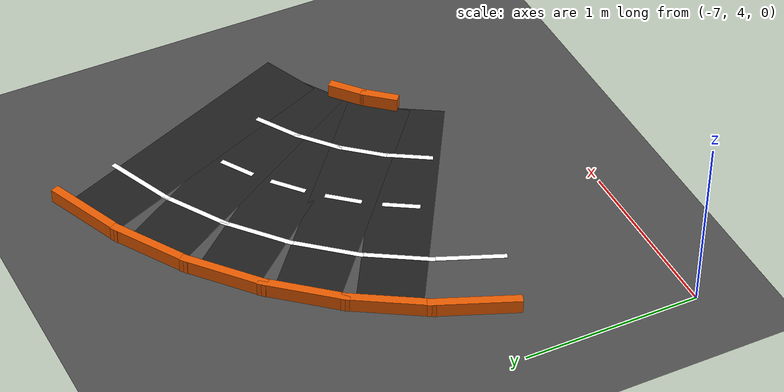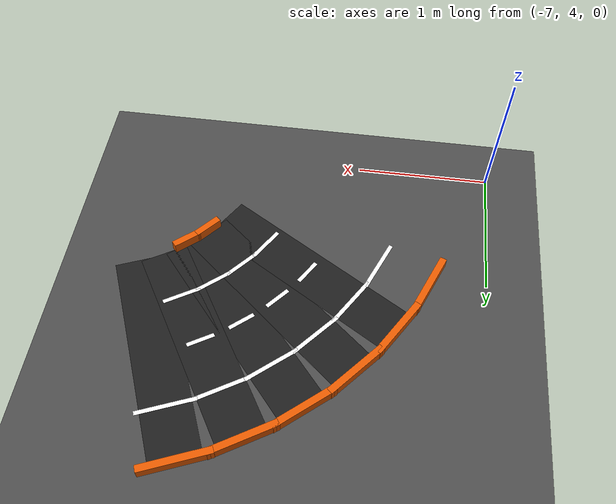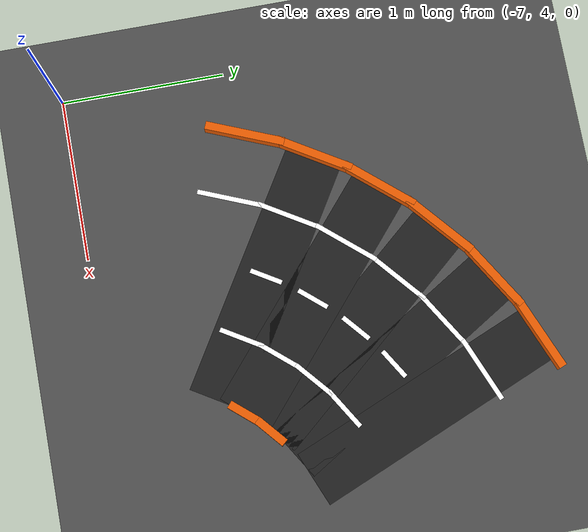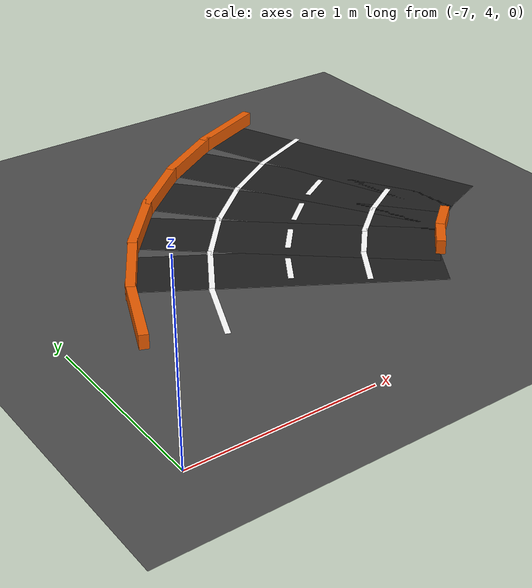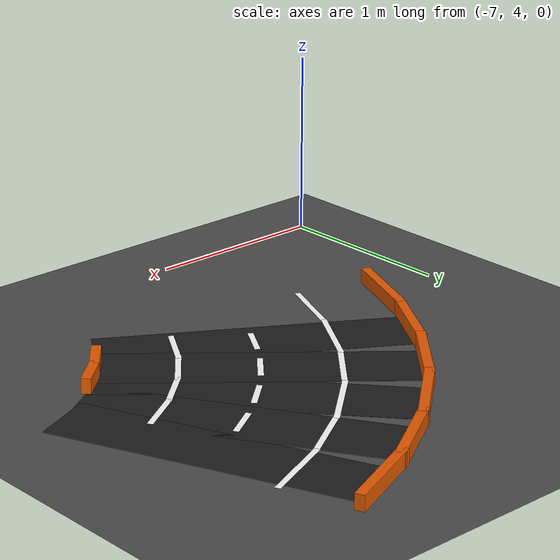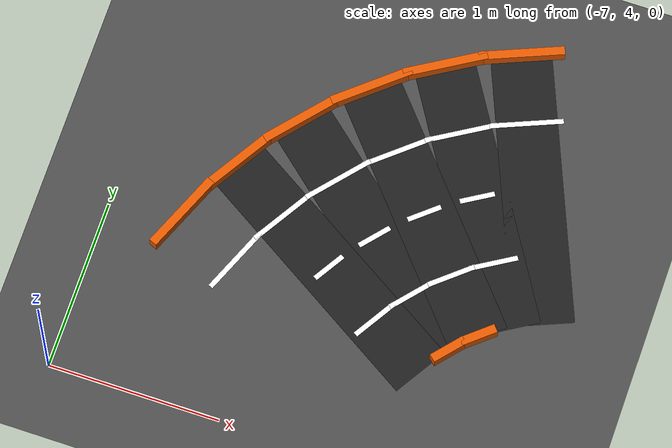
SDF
<sdf version="1.6">
 <world name="lab_track">
  <model name="ground_plane">
   <static>true</static>
   <link name="link">
    <collision name="collision">
     <geometry><plane><normal>0 0 1</normal><size>200 200</size></plane></geometry>
    </collision>
    <visual name="visual">
     <geometry><plane><normal>0 0 1</normal><size>200 200</size></plane></geometry>
     <material><ambient>0.3 0.3 0.3 1</ambient><diffuse>0.3 0.3 0.3 1</diffuse></material>
    </visual>
   </link>
  </model>
  <model name="m224">
   <static>true</static>
   <pose>-4.7654 5.8478 0.00100 0 0 3.53429</pose>
   <link name="l">
    <visual name="v">
     <geometry><box><size>0.3519 1.6000 0.0010</size></box></geometry>
     <material><ambient>0.12 0.12 0.12 1</ambient><diffuse>0.12 0.12 0.12 1</diffuse></material>
    </visual>
   </link>
  </model>
  <model name="m226">
   <static>true</static>
   <pose>-5.0715 6.5869 0.04000 0 0 3.53429</pose>
   <link name="l">
    <visual name="v">
     <geometry><box><size>0.4926 0.0500 0.0800</size></box></geometry>
     <material><ambient>0.9 0.35 0.0 1</ambient><diffuse>0.9 0.35 0.0 1</diffuse></material>
    </visual>
   </link>
  </model>
  <model name="m228">
   <static>true</static>
   <pose>-4.9184 6.2173 0.00200 0 0 3.53429</pose>
   <link name="l">
    <visual name="v">
     <geometry><box><size>0.4222 0.0300 0.0010</size></box></geometry>
     <material><ambient>1 1 1 1</ambient><diffuse>1 1 1 1</diffuse></material>
    </visual>
   </link>
  </model>
  <model name="m230">
   <static>true</static>
   <pose>-5.0450 5.7053 0.00100 0 0 3.69137</pose>
   <link name="l">
    <visual name="v">
     <geometry><box><size>0.3519 1.6000 0.0010</size></box></geometry>
     <material><ambient>0.12 0.12 0.12 1</ambient><diffuse>0.12 0.12 0.12 1</diffuse></material>
    </visual>
   </link>
  </model>
  <model name="m232">
   <static>true</static>
   <pose>-5.4630 6.3874 0.04000 0 0 3.69137</pose>
   <link name="l">
    <visual name="v">
     <geometry><box><size>0.4926 0.0500 0.0800</size></box></geometry>
     <material><ambient>0.9 0.35 0.0 1</ambient><diffuse>0.9 0.35 0.0 1</diffuse></material>
    </visual>
   </link>
  </model>
  <model name="m233">
   <static>true</static>
   <pose>-4.8360 5.3642 0.00200 0 0 3.69137</pose>
   <link name="l">
    <visual name="v">
     <geometry><box><size>0.2815 0.0300 0.0010</size></box></geometry>
     <material><ambient>1 1 1 1</ambient><diffuse>1 1 1 1</diffuse></material>
    </visual>
   </link>
  </model>
  <model name="m234">
   <static>true</static>
   <pose>-5.2540 6.0463 0.00200 0 0 3.69137</pose>
   <link name="l">
    <visual name="v">
     <geometry><box><size>0.4222 0.0300 0.0010</size></box></geometry>
     <material><ambient>1 1 1 1</ambient><diffuse>1 1 1 1</diffuse></material>
    </visual>
   </link>
  </model>
  <model name="m235">
   <static>true</static>
   <pose>-5.0450 5.7053 0.00200 0 0 3.69137</pose>
   <link name="l">
    <visual name="v">
     <geometry><box><size>0.2042 0.0300 0.0010</size></box></geometry>
     <material><ambient>1 1 1 1</ambient><diffuse>1 1 1 1</diffuse></material>
    </visual>
   </link>
  </model>
  <model name="m236">
   <static>true</static>
   <pose>-5.2989 5.5208 0.00100 0 0 3.84845</pose>
   <link name="l">
    <visual name="v">
     <geometry><box><size>0.3519 1.6000 0.0010</size></box></geometry>
     <material><ambient>0.12 0.12 0.12 1</ambient><diffuse>0.12 0.12 0.12 1</diffuse></material>
    </visual>
   </link>
  </model>
  <model name="m237">
   <static>true</static>
   <pose>-4.7793 4.9125 0.04000 0 0 3.84845</pose>
   <link name="l">
    <visual name="v">
     <geometry><box><size>0.2111 0.0500 0.0800</size></box></geometry>
     <material><ambient>0.9 0.35 0.0 1</ambient><diffuse>0.9 0.35 0.0 1</diffuse></material>
    </visual>
   </link>
  </model>
  <model name="m238">
   <static>true</static>
   <pose>-5.8185 6.1291 0.04000 0 0 3.84845</pose>
   <link name="l">
    <visual name="v">
     <geometry><box><size>0.4926 0.0500 0.0800</size></box></geometry>
     <material><ambient>0.9 0.35 0.0 1</ambient><diffuse>0.9 0.35 0.0 1</diffuse></material>
    </visual>
   </link>
  </model>
  <model name="m239">
   <static>true</static>
   <pose>-5.0391 5.2166 0.00200 0 0 3.84845</pose>
   <link name="l">
    <visual name="v">
     <geometry><box><size>0.2815 0.0300 0.0010</size></box></geometry>
     <material><ambient>1 1 1 1</ambient><diffuse>1 1 1 1</diffuse></material>
    </visual>
   </link>
  </model>
  <model name="m240">
   <static>true</static>
   <pose>-5.5587 5.8250 0.00200 0 0 3.84845</pose>
   <link name="l">
    <visual name="v">
     <geometry><box><size>0.4222 0.0300 0.0010</size></box></geometry>
     <material><ambient>1 1 1 1</ambient><diffuse>1 1 1 1</diffuse></material>
    </visual>
   </link>
  </model>
  <model name="m241">
   <static>true</static>
   <pose>-5.2989 5.5208 0.00200 0 0 3.84845</pose>
   <link name="l">
    <visual name="v">
     <geometry><box><size>0.2042 0.0300 0.0010</size></box></geometry>
     <material><ambient>1 1 1 1</ambient><diffuse>1 1 1 1</diffuse></material>
    </visual>
   </link>
  </model>
  <model name="m242">
   <static>true</static>
   <pose>-5.5208 5.2989 0.00100 0 0 4.00553</pose>
   <link name="l">
    <visual name="v">
     <geometry><box><size>0.3519 1.6000 0.0010</size></box></geometry>
     <material><ambient>0.12 0.12 0.12 1</ambient><diffuse>0.12 0.12 0.12 1</diffuse></material>
    </visual>
   </link>
  </model>
  <model name="m243">
   <static>true</static>
   <pose>-4.9125 4.7793 0.04000 0 0 4.00553</pose>
   <link name="l">
    <visual name="v">
     <geometry><box><size>0.2111 0.0500 0.0800</size></box></geometry>
     <material><ambient>0.9 0.35 0.0 1</ambient><diffuse>0.9 0.35 0.0 1</diffuse></material>
    </visual>
   </link>
  </model>
  <model name="m244">
   <static>true</static>
   <pose>-6.1291 5.8185 0.04000 0 0 4.00553</pose>
   <link name="l">
    <visual name="v">
     <geometry><box><size>0.4926 0.0500 0.0800</size></box></geometry>
     <material><ambient>0.9 0.35 0.0 1</ambient><diffuse>0.9 0.35 0.0 1</diffuse></material>
    </visual>
   </link>
  </model>
  <model name="m245">
   <static>true</static>
   <pose>-5.2166 5.0391 0.00200 0 0 4.00553</pose>
   <link name="l">
    <visual name="v">
     <geometry><box><size>0.2815 0.0300 0.0010</size></box></geometry>
     <material><ambient>1 1 1 1</ambient><diffuse>1 1 1 1</diffuse></material>
    </visual>
   </link>
  </model>
  <model name="m246">
   <static>true</static>
   <pose>-5.8250 5.5587 0.00200 0 0 4.00553</pose>
   <link name="l">
    <visual name="v">
     <geometry><box><size>0.4222 0.0300 0.0010</size></box></geometry>
     <material><ambient>1 1 1 1</ambient><diffuse>1 1 1 1</diffuse></material>
    </visual>
   </link>
  </model>
  <model name="m247">
   <static>true</static>
   <pose>-5.5208 5.2989 0.00200 0 0 4.00553</pose>
   <link name="l">
    <visual name="v">
     <geometry><box><size>0.2042 0.0300 0.0010</size></box></geometry>
     <material><ambient>1 1 1 1</ambient><diffuse>1 1 1 1</diffuse></material>
    </visual>
   </link>
  </model>
  <model name="m248">
   <static>true</static>
   <pose>-5.7053 5.0450 0.00100 0 0 4.16261</pose>
   <link name="l">
    <visual name="v">
     <geometry><box><size>0.3519 1.6000 0.0010</size></box></geometry>
     <material><ambient>0.12 0.12 0.12 1</ambient><diffuse>0.12 0.12 0.12 1</diffuse></material>
    </visual>
   </link>
  </model>
  <model name="m250">
   <static>true</static>
   <pose>-6.3874 5.4630 0.04000 0 0 4.16261</pose>
   <link name="l">
    <visual name="v">
     <geometry><box><size>0.4926 0.0500 0.0800</size></box></geometry>
     <material><ambient>0.9 0.35 0.0 1</ambient><diffuse>0.9 0.35 0.0 1</diffuse></material>
    </visual>
   </link>
  </model>
  <model name="m251">
   <static>true</static>
   <pose>-5.3642 4.8360 0.00200 0 0 4.16261</pose>
   <link name="l">
    <visual name="v">
     <geometry><box><size>0.2815 0.0300 0.0010</size></box></geometry>
     <material><ambient>1 1 1 1</ambient><diffuse>1 1 1 1</diffuse></material>
    </visual>
   </link>
  </model>
  <model name="m252">
   <static>true</static>
   <pose>-6.0463 5.2540 0.00200 0 0 4.16261</pose>
   <link name="l">
    <visual name="v">
     <geometry><box><size>0.4222 0.0300 0.0010</size></box></geometry>
     <material><ambient>1 1 1 1</ambient><diffuse>1 1 1 1</diffuse></material>
    </visual>
   </link>
  </model>
  <model name="m253">
   <static>true</static>
   <pose>-5.7053 5.0450 0.00200 0 0 4.16261</pose>
   <link name="l">
    <visual name="v">
     <geometry><box><size>0.2042 0.0300 0.0010</size></box></geometry>
     <material><ambient>1 1 1 1</ambient><diffuse>1 1 1 1</diffuse></material>
    </visual>
   </link>
  </model>
  <model name="m256">
   <static>true</static>
   <pose>-6.5869 5.0715 0.04000 0 0 4.31969</pose>
   <link name="l">
    <visual name="v">
     <geometry><box><size>0.4926 0.0500 0.0800</size></box></geometry>
     <material><ambient>0.9 0.35 0.0 1</ambient><diffuse>0.9 0.35 0.0 1</diffuse></material>
    </visual>
   </link>
  </model>
  <model name="m258">
   <static>true</static>
   <pose>-6.2173 4.9184 0.00200 0 0 4.31969</pose>
   <link name="l">
    <visual name="v">
     <geometry><box><size>0.4222 0.0300 0.0010</size></box></geometry>
     <material><ambient>1 1 1 1</ambient><diffuse>1 1 1 1</diffuse></material>
    </visual>
   </link>
  </model>
 </world>
</sdf>
